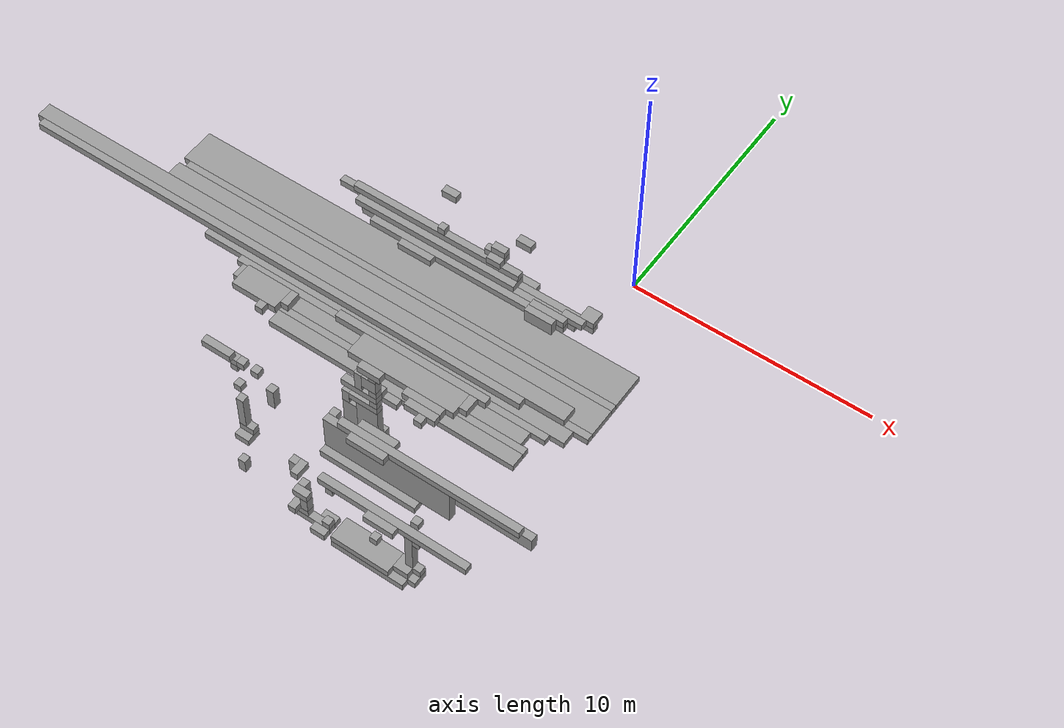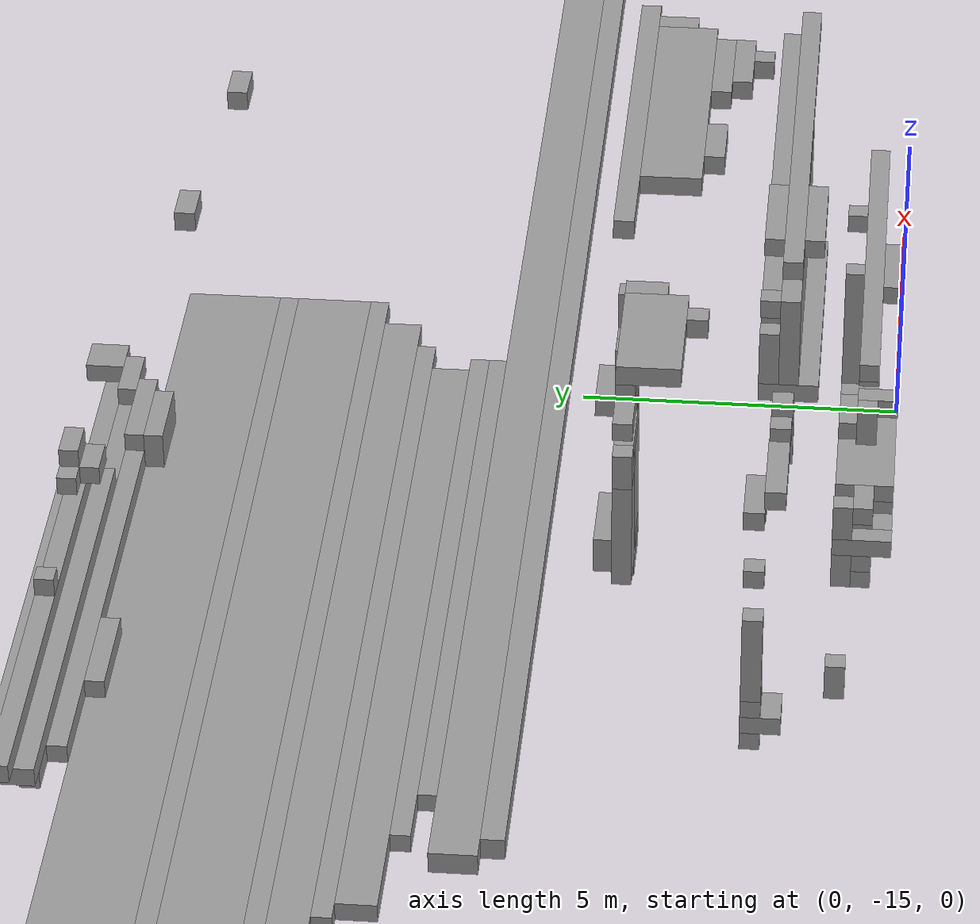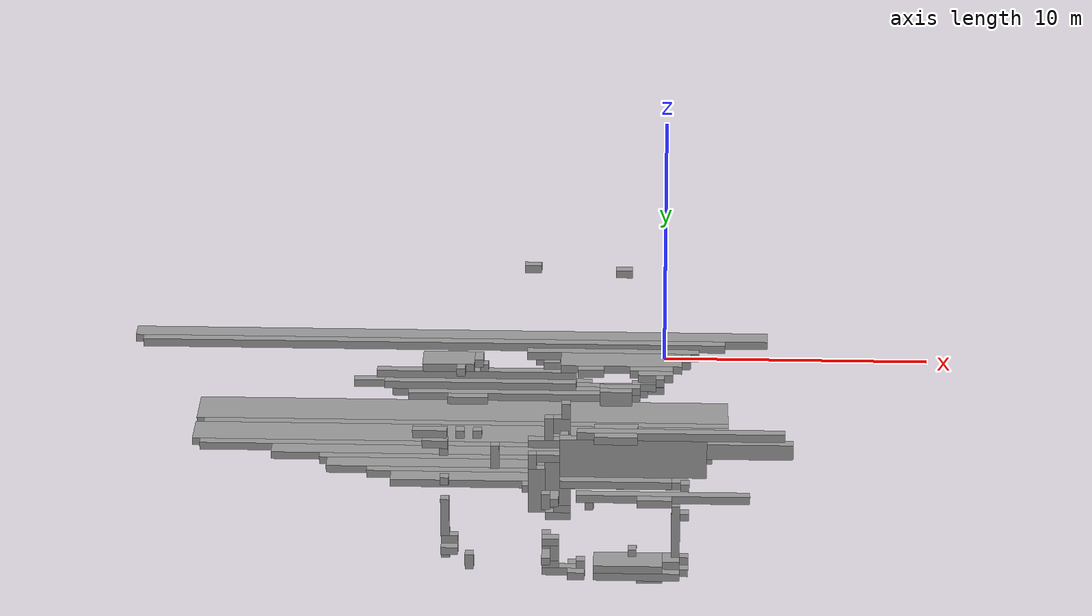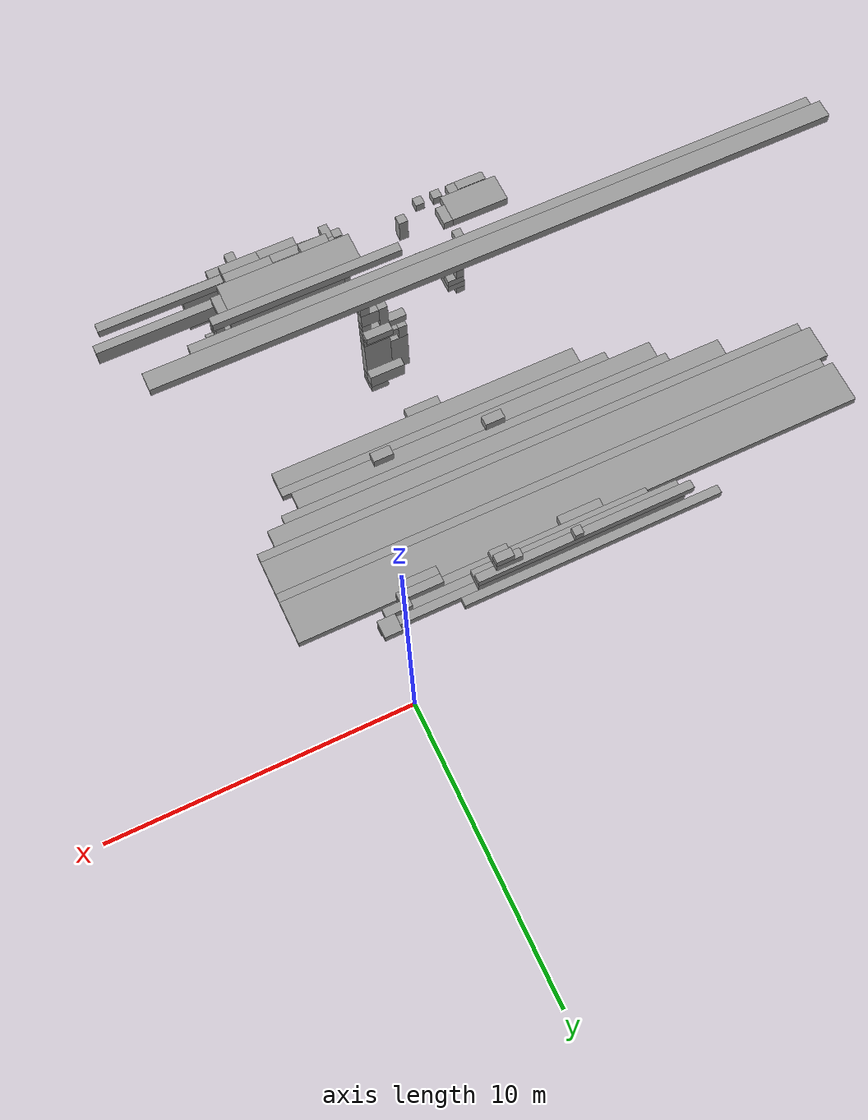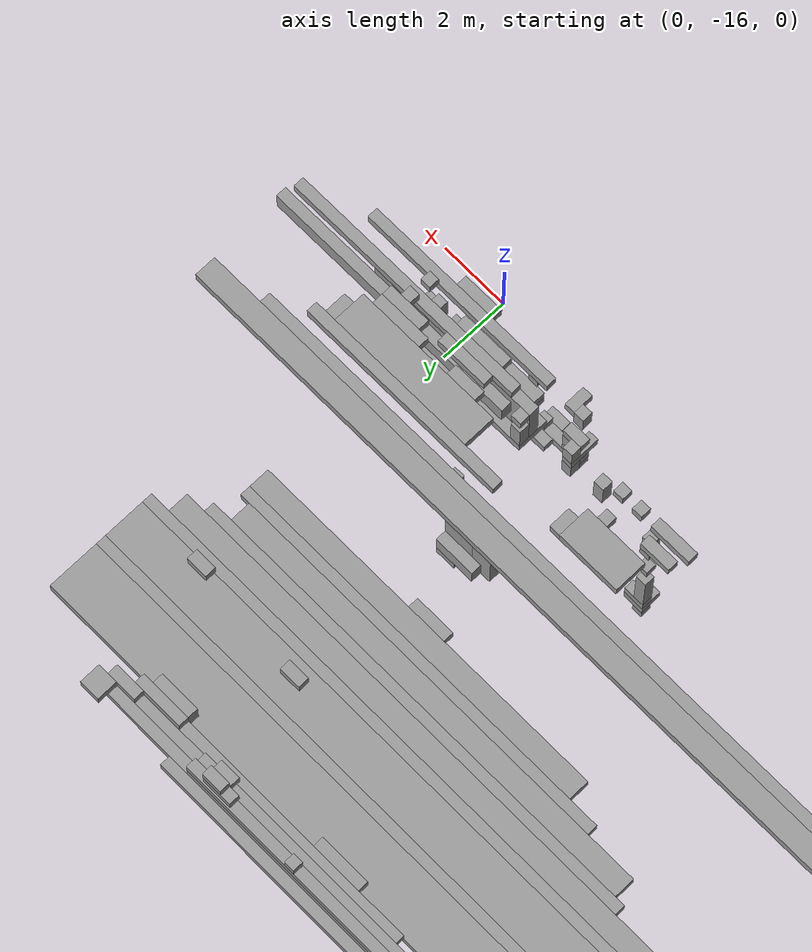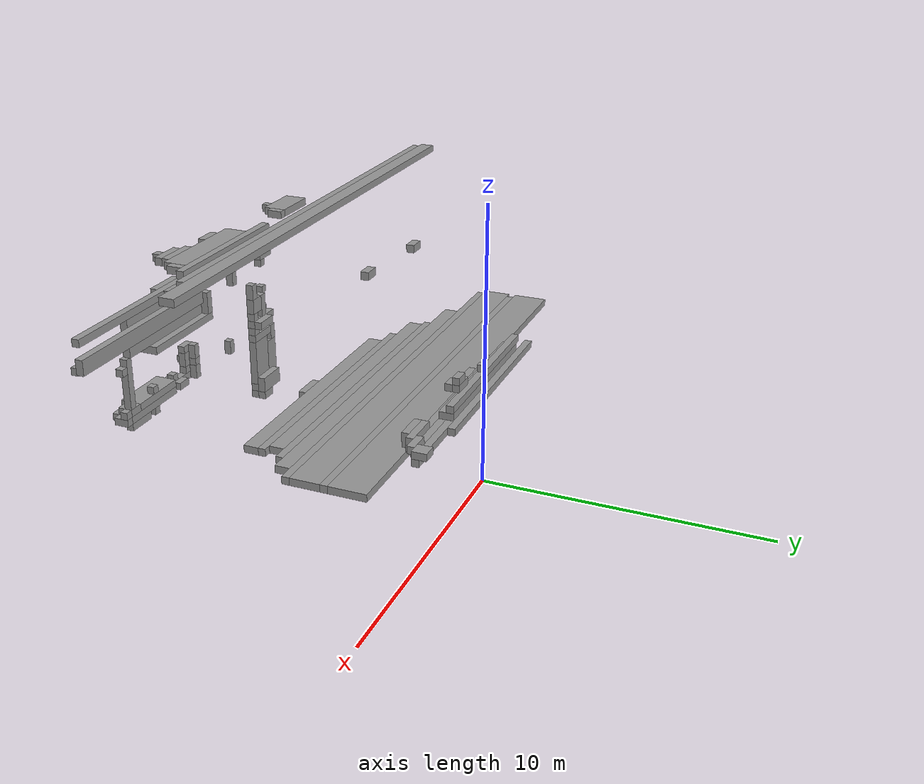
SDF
<sdf version="1.6">
 <world name="bt_world">
  <include><uri>model://sun</uri></include>
  <model name="obstacle_1034">
   <static>true</static>
   <pose>-7.5 -9.9 6.45 0 0 0</pose>
   <link name="link">
    <collision name="collision"><geometry><box><size>22.2 0.6 0.3</size></box></geometry></collision>
    <visual name="visual">
     <geometry><box><size>22.2 0.6 0.3</size></box></geometry>
     <material><ambient>0.5 0.5 0.5 1</ambient><diffuse>0.6 0.6 0.6 1</diffuse></material>
    </visual>
   </link>
  </model>
  <model name="obstacle_1057">
   <static>true</static>
   <pose>-8.1 -10.35 6.45 0 0 0</pose>
   <link name="link">
    <collision name="collision"><geometry><box><size>20.4 0.3 0.3</size></box></geometry></collision>
    <visual name="visual">
     <geometry><box><size>20.4 0.3 0.3</size></box></geometry>
     <material><ambient>0.5 0.5 0.5 1</ambient><diffuse>0.6 0.6 0.6 1</diffuse></material>
    </visual>
   </link>
  </model>
  <model name="obstacle_1107">
   <static>true</static>
   <pose>-7.5 -5.7 -0.15 0 0 0</pose>
   <link name="link">
    <collision name="collision"><geometry><box><size>19.8 1.2 0.3</size></box></geometry></collision>
    <visual name="visual">
     <geometry><box><size>19.8 1.2 0.3</size></box></geometry>
     <material><ambient>0.5 0.5 0.5 1</ambient><diffuse>0.6 0.6 0.6 1</diffuse></material>
    </visual>
   </link>
  </model>
  <model name="obstacle_1108">
   <static>true</static>
   <pose>-7.5 -4.05 -0.15 0 0 0</pose>
   <link name="link">
    <collision name="collision"><geometry><box><size>19.8 1.5 0.3</size></box></geometry></collision>
    <visual name="visual">
     <geometry><box><size>19.8 1.5 0.3</size></box></geometry>
     <material><ambient>0.5 0.5 0.5 1</ambient><diffuse>0.6 0.6 0.6 1</diffuse></material>
    </visual>
   </link>
  </model>
  <model name="obstacle_1150">
   <static>true</static>
   <pose>-7.35 -6.45 -0.15 0 0 0</pose>
   <link name="link">
    <collision name="collision"><geometry><box><size>19.5 0.3 0.3</size></box></geometry></collision>
    <visual name="visual">
     <geometry><box><size>19.5 0.3 0.3</size></box></geometry>
     <material><ambient>0.5 0.5 0.5 1</ambient><diffuse>0.6 0.6 0.6 1</diffuse></material>
    </visual>
   </link>
  </model>
  <model name="obstacle_1151">
   <static>true</static>
   <pose>-7.35 -4.95 -0.15 0 0 0</pose>
   <link name="link">
    <collision name="collision"><geometry><box><size>19.5 0.3 0.3</size></box></geometry></collision>
    <visual name="visual">
     <geometry><box><size>19.5 0.3 0.3</size></box></geometry>
     <material><ambient>0.5 0.5 0.5 1</ambient><diffuse>0.6 0.6 0.6 1</diffuse></material>
    </visual>
   </link>
  </model>
  <model name="obstacle_1298">
   <static>true</static>
   <pose>-6.3 -6.8999999999999995 -0.15 0 0 0</pose>
   <link name="link">
    <collision name="collision"><geometry><box><size>16.2 0.6 0.3</size></box></geometry></collision>
    <visual name="visual">
     <geometry><box><size>16.2 0.6 0.3</size></box></geometry>
     <material><ambient>0.5 0.5 0.5 1</ambient><diffuse>0.6 0.6 0.6 1</diffuse></material>
    </visual>
   </link>
  </model>
  <model name="obstacle_1578">
   <static>true</static>
   <pose>-5.7 -7.35 -0.15 0 0 0</pose>
   <link name="link">
    <collision name="collision">
     <geometry><box><size>13.799999999999999 0.3 0.3</size></box></geometry>
    </collision>
    <visual name="visual">
     <geometry><box><size>13.799999999999999 0.3 0.3</size></box></geometry>
     <material><ambient>0.5 0.5 0.5 1</ambient><diffuse>0.6 0.6 0.6 1</diffuse></material>
    </visual>
   </link>
  </model>
  <model name="obstacle_1591">
   <static>true</static>
   <pose>-5.85 -7.8 -0.15 0 0 0</pose>
   <link name="link">
    <collision name="collision"><geometry><box><size>12.9 0.6 0.3</size></box></geometry></collision>
    <visual name="visual">
     <geometry><box><size>12.9 0.6 0.3</size></box></geometry>
     <material><ambient>0.5 0.5 0.5 1</ambient><diffuse>0.6 0.6 0.6 1</diffuse></material>
    </visual>
   </link>
  </model>
  <model name="obstacle_1633">
   <static>true</static>
   <pose>-7.199999999999999 -2.25 0.15 0 0 0</pose>
   <link name="link">
    <collision name="collision"><geometry><box><size>9.0 0.3 0.3</size></box></geometry></collision>
    <visual name="visual">
     <geometry><box><size>9.0 0.3 0.3</size></box></geometry>
     <material><ambient>0.5 0.5 0.5 1</ambient><diffuse>0.6 0.6 0.6 1</diffuse></material>
    </visual>
   </link>
  </model>
  <model name="obstacle_1670">
   <static>true</static>
   <pose>-4.95 -8.25 -0.15 0 0 0</pose>
   <link name="link">
    <collision name="collision"><geometry><box><size>11.7 0.3 0.3</size></box></geometry></collision>
    <visual name="visual">
     <geometry><box><size>11.7 0.3 0.3</size></box></geometry>
     <material><ambient>0.5 0.5 0.5 1</ambient><diffuse>0.6 0.6 0.6 1</diffuse></material>
    </visual>
   </link>
  </model>
  <model name="obstacle_1672">
   <static>true</static>
   <pose>-7.05 -2.55 0.75 0 0 0</pose>
   <link name="link">
    <collision name="collision"><geometry><box><size>7.5 0.3 0.3</size></box></geometry></collision>
    <visual name="visual">
     <geometry><box><size>7.5 0.3 0.3</size></box></geometry>
     <material><ambient>0.5 0.5 0.5 1</ambient><diffuse>0.6 0.6 0.6 1</diffuse></material>
    </visual>
   </link>
  </model>
  <model name="obstacle_1675">
   <static>true</static>
   <pose>-6.8999999999999995 -2.6999999999999997 0.44999999999999996 0 0 0</pose>
   <link name="link">
    <collision name="collision"><geometry><box><size>7.199999999999999 0.6 0.3</size></box></geometry></collision>
    <visual name="visual">
     <geometry><box><size>7.199999999999999 0.6 0.3</size></box></geometry>
     <material><ambient>0.5 0.5 0.5 1</ambient><diffuse>0.6 0.6 0.6 1</diffuse></material>
    </visual>
   </link>
  </model>
  <model name="obstacle_1681">
   <static>true</static>
   <pose>-5.3999999999999995 -2.85 0.15 0 0 0</pose>
   <link name="link">
    <collision name="collision"><geometry><box><size>9.6 0.3 0.3</size></box></geometry></collision>
    <visual name="visual">
     <geometry><box><size>9.6 0.3 0.3</size></box></geometry>
     <material><ambient>0.5 0.5 0.5 1</ambient><diffuse>0.6 0.6 0.6 1</diffuse></material>
    </visual>
   </link>
  </model>
  <model name="obstacle_1691">
   <static>true</static>
   <pose>-4.5 -8.7 -0.15 0 0 0</pose>
   <link name="link">
    <collision name="collision">
     <geometry><box><size>10.799999999999999 0.6 0.3</size></box></geometry>
    </collision>
    <visual name="visual">
     <geometry><box><size>10.799999999999999 0.6 0.3</size></box></geometry>
     <material><ambient>0.5 0.5 0.5 1</ambient><diffuse>0.6 0.6 0.6 1</diffuse></material>
    </visual>
   </link>
  </model>
  <model name="obstacle_1706">
   <static>true</static>
   <pose>-5.25 -3.15 0.15 0 0 0</pose>
   <link name="link">
    <collision name="collision"><geometry><box><size>8.7 0.3 0.3</size></box></geometry></collision>
    <visual name="visual">
     <geometry><box><size>8.7 0.3 0.3</size></box></geometry>
     <material><ambient>0.5 0.5 0.5 1</ambient><diffuse>0.6 0.6 0.6 1</diffuse></material>
    </visual>
   </link>
  </model>
  <model name="obstacle_1732">
   <static>true</static>
   <pose>-8.1 -13.35 4.6499999999999995 0 0 0</pose>
   <link name="link">
    <collision name="collision"><geometry><box><size>1.2 0.3 0.3</size></box></geometry></collision>
    <visual name="visual">
     <geometry><box><size>1.2 0.3 0.3</size></box></geometry>
     <material><ambient>0.5 0.5 0.5 1</ambient><diffuse>0.6 0.6 0.6 1</diffuse></material>
    </visual>
   </link>
  </model>
  <model name="obstacle_1737">
   <static>true</static>
   <pose>-7.949999999999999 -13.049999999999999 4.05 0 0 0</pose>
   <link name="link">
    <collision name="collision">
     <geometry><box><size>0.8999999999999999 0.3 0.3</size></box></geometry>
    </collision>
    <visual name="visual">
     <geometry><box><size>0.8999999999999999 0.3 0.3</size></box></geometry>
     <material><ambient>0.5 0.5 0.5 1</ambient><diffuse>0.6 0.6 0.6 1</diffuse></material>
    </visual>
   </link>
  </model>
  <model name="obstacle_1738">
   <static>true</static>
   <pose>-7.5 -11.549999999999999 6.45 0 0 0</pose>
   <link name="link">
    <collision name="collision">
     <geometry><box><size>1.7999999999999998 0.8999999999999999 0.3</size></box></geometry>
    </collision>
    <visual name="visual">
     <geometry><box><size>1.7999999999999998 0.8999999999999999 0.3</size></box></geometry>
     <material><ambient>0.5 0.5 0.5 1</ambient><diffuse>0.6 0.6 0.6 1</diffuse></material>
    </visual>
   </link>
  </model>
  <model name="obstacle_1739">
   <static>true</static>
   <pose>-7.35 -3.4499999999999997 0.15 0 0 0</pose>
   <link name="link">
    <collision name="collision"><geometry><box><size>1.5 0.3 0.3</size></box></geometry></collision>
    <visual name="visual">
     <geometry><box><size>1.5 0.3 0.3</size></box></geometry>
     <material><ambient>0.5 0.5 0.5 1</ambient><diffuse>0.6 0.6 0.6 1</diffuse></material>
    </visual>
   </link>
  </model>
  <model name="obstacle_1743">
   <static>true</static>
   <pose>-7.5 -13.2 -0.15 0 0 0</pose>
   <link name="link">
    <collision name="collision"><geometry><box><size>0.6 0.6 0.3</size></box></geometry></collision>
    <visual name="visual">
     <geometry><box><size>0.6 0.6 0.3</size></box></geometry>
     <material><ambient>0.5 0.5 0.5 1</ambient><diffuse>0.6 0.6 0.6 1</diffuse></material>
    </visual>
   </link>
  </model>
  <model name="obstacle_1744">
   <static>true</static>
   <pose>-7.6499999999999995 -13.049999999999999 -0.44999999999999996 0 0 0</pose>
   <link name="link">
    <collision name="collision"><geometry><box><size>0.3 0.3 0.3</size></box></geometry></collision>
    <visual name="visual">
     <geometry><box><size>0.3 0.3 0.3</size></box></geometry>
     <material><ambient>0.5 0.5 0.5 1</ambient><diffuse>0.6 0.6 0.6 1</diffuse></material>
    </visual>
   </link>
  </model>
  <model name="obstacle_1745">
   <static>true</static>
   <pose>-7.5 -13.049999999999999 0.15 0 0 0</pose>
   <link name="link">
    <collision name="collision"><geometry><box><size>0.6 0.3 0.3</size></box></geometry></collision>
    <visual name="visual">
     <geometry><box><size>0.6 0.3 0.3</size></box></geometry>
     <material><ambient>0.5 0.5 0.5 1</ambient><diffuse>0.6 0.6 0.6 1</diffuse></material>
    </visual>
   </link>
  </model>
  <model name="obstacle_1746">
   <static>true</static>
   <pose>-7.6499999999999995 -13.049999999999999 1.05 0 0 0</pose>
   <link name="link">
    <collision name="collision"><geometry><box><size>0.3 0.3 1.5</size></box></geometry></collision>
    <visual name="visual">
     <geometry><box><size>0.3 0.3 1.5</size></box></geometry>
     <material><ambient>0.5 0.5 0.5 1</ambient><diffuse>0.6 0.6 0.6 1</diffuse></material>
    </visual>
   </link>
  </model>
  <model name="obstacle_1747">
   <static>true</static>
   <pose>-7.6499999999999995 -13.049999999999999 2.55 0 0 0</pose>
   <link name="link">
    <collision name="collision"><geometry><box><size>0.3 0.3 0.3</size></box></geometry></collision>
    <visual name="visual">
     <geometry><box><size>0.3 0.3 0.3</size></box></geometry>
     <material><ambient>0.5 0.5 0.5 1</ambient><diffuse>0.6 0.6 0.6 1</diffuse></material>
    </visual>
   </link>
  </model>
  <model name="obstacle_1748">
   <static>true</static>
   <pose>-7.6499999999999995 -13.049999999999999 3.75 0 0 0</pose>
   <link name="link">
    <collision name="collision"><geometry><box><size>0.3 0.3 0.3</size></box></geometry></collision>
    <visual name="visual">
     <geometry><box><size>0.3 0.3 0.3</size></box></geometry>
     <material><ambient>0.5 0.5 0.5 1</ambient><diffuse>0.6 0.6 0.6 1</diffuse></material>
    </visual>
   </link>
  </model>
  <model name="obstacle_1757">
   <static>true</static>
   <pose>-7.05 -2.55 0.15 0 0 0</pose>
   <link name="link">
    <collision name="collision">
     <geometry><box><size>0.8999999999999999 0.3 0.3</size></box></geometry>
    </collision>
    <visual name="visual">
     <geometry><box><size>0.8999999999999999 0.3 0.3</size></box></geometry>
     <material><ambient>0.5 0.5 0.5 1</ambient><diffuse>0.6 0.6 0.6 1</diffuse></material>
    </visual>
   </link>
  </model>
  <model name="obstacle_1762">
   <static>true</static>
   <pose>-7.05 -13.35 4.6499999999999995 0 0 0</pose>
   <link name="link">
    <collision name="collision"><geometry><box><size>0.3 0.3 0.3</size></box></geometry></collision>
    <visual name="visual">
     <geometry><box><size>0.3 0.3 0.3</size></box></geometry>
     <material><ambient>0.5 0.5 0.5 1</ambient><diffuse>0.6 0.6 0.6 1</diffuse></material>
    </visual>
   </link>
  </model>
  <model name="obstacle_1763">
   <static>true</static>
   <pose>-7.05 -12.15 6.45 0 0 0</pose>
   <link name="link">
    <collision name="collision"><geometry><box><size>0.3 0.3 0.3</size></box></geometry></collision>
    <visual name="visual">
     <geometry><box><size>0.3 0.3 0.3</size></box></geometry>
     <material><ambient>0.5 0.5 0.5 1</ambient><diffuse>0.6 0.6 0.6 1</diffuse></material>
    </visual>
   </link>
  </model>
  <model name="obstacle_1766">
   <static>true</static>
   <pose>-6.75 -14.25 0.0 0 0 0</pose>
   <link name="link">
    <collision name="collision"><geometry><box><size>0.3 0.3 0.6</size></box></geometry></collision>
    <visual name="visual">
     <geometry><box><size>0.3 0.3 0.6</size></box></geometry>
     <material><ambient>0.5 0.5 0.5 1</ambient><diffuse>0.6 0.6 0.6 1</diffuse></material>
    </visual>
   </link>
  </model>
  <model name="obstacle_1767">
   <static>true</static>
   <pose>-6.75 -2.55 1.05 0 0 0</pose>
   <link name="link">
    <collision name="collision"><geometry><box><size>0.3 0.3 0.3</size></box></geometry></collision>
    <visual name="visual">
     <geometry><box><size>0.3 0.3 0.3</size></box></geometry>
     <material><ambient>0.5 0.5 0.5 1</ambient><diffuse>0.6 0.6 0.6 1</diffuse></material>
    </visual>
   </link>
  </model>
  <model name="obstacle_1769">
   <static>true</static>
   <pose>-6.45 -13.35 4.6499999999999995 0 0 0</pose>
   <link name="link">
    <collision name="collision"><geometry><box><size>0.3 0.3 0.3</size></box></geometry></collision>
    <visual name="visual">
     <geometry><box><size>0.3 0.3 0.3</size></box></geometry>
     <material><ambient>0.5 0.5 0.5 1</ambient><diffuse>0.6 0.6 0.6 1</diffuse></material>
    </visual>
   </link>
  </model>
  <model name="obstacle_1770">
   <static>true</static>
   <pose>-6.45 -11.4 6.45 0 0 0</pose>
   <link name="link">
    <collision name="collision"><geometry><box><size>0.3 0.6 0.3</size></box></geometry></collision>
    <visual name="visual">
     <geometry><box><size>0.3 0.6 0.3</size></box></geometry>
     <material><ambient>0.5 0.5 0.5 1</ambient><diffuse>0.6 0.6 0.6 1</diffuse></material>
    </visual>
   </link>
  </model>
  <model name="obstacle_1773">
   <static>true</static>
   <pose>-5.85 -2.55 0.15 0 0 0</pose>
   <link name="link">
    <collision name="collision">
     <geometry><box><size>0.8999999999999999 0.3 0.3</size></box></geometry>
    </collision>
    <visual name="visual">
     <geometry><box><size>0.8999999999999999 0.3 0.3</size></box></geometry>
     <material><ambient>0.5 0.5 0.5 1</ambient><diffuse>0.6 0.6 0.6 1</diffuse></material>
    </visual>
   </link>
  </model>
  <model name="obstacle_1775">
   <static>true</static>
   <pose>-5.85 -13.35 3.75 0 0 0</pose>
   <link name="link">
    <collision name="collision">
     <geometry><box><size>0.3 0.3 0.8999999999999999</size></box></geometry>
    </collision>
    <visual name="visual">
     <geometry><box><size>0.3 0.3 0.8999999999999999</size></box></geometry>
     <material><ambient>0.5 0.5 0.5 1</ambient><diffuse>0.6 0.6 0.6 1</diffuse></material>
    </visual>
   </link>
  </model>
  <model name="obstacle_1779">
   <static>true</static>
   <pose>-4.5 -9.15 -0.15 0 0 0</pose>
   <link name="link">
    <collision name="collision"><geometry><box><size>1.2 0.3 0.3</size></box></geometry></collision>
    <visual name="visual">
     <geometry><box><size>1.2 0.3 0.3</size></box></geometry>
     <material><ambient>0.5 0.5 0.5 1</ambient><diffuse>0.6 0.6 0.6 1</diffuse></material>
    </visual>
   </link>
  </model>
  <model name="obstacle_1780">
   <static>true</static>
   <pose>-4.8 -4.6499999999999995 6.45 0 0 0</pose>
   <link name="link">
    <collision name="collision"><geometry><box><size>0.6 0.3 0.3</size></box></geometry></collision>
    <visual name="visual">
     <geometry><box><size>0.6 0.3 0.3</size></box></geometry>
     <material><ambient>0.5 0.5 0.5 1</ambient><diffuse>0.6 0.6 0.6 1</diffuse></material>
    </visual>
   </link>
  </model>
  <model name="obstacle_1781">
   <static>true</static>
   <pose>-4.6499999999999995 -2.55 0.15 0 0 0</pose>
   <link name="link">
    <collision name="collision">
     <geometry><box><size>0.8999999999999999 0.3 0.3</size></box></geometry>
    </collision>
    <visual name="visual">
     <geometry><box><size>0.8999999999999999 0.3 0.3</size></box></geometry>
     <material><ambient>0.5 0.5 0.5 1</ambient><diffuse>0.6 0.6 0.6 1</diffuse></material>
    </visual>
   </link>
  </model>
  <model name="obstacle_1784">
   <static>true</static>
   <pose>-4.5 -10.95 0.8999999999999999 0 0 0</pose>
   <link name="link">
    <collision name="collision">
     <geometry><box><size>0.6 0.3 1.7999999999999998</size></box></geometry>
    </collision>
    <visual name="visual">
     <geometry><box><size>0.6 0.3 1.7999999999999998</size></box></geometry>
     <material><ambient>0.5 0.5 0.5 1</ambient><diffuse>0.6 0.6 0.6 1</diffuse></material>
    </visual>
   </link>
  </model>
  <model name="obstacle_1785">
   <static>true</static>
   <pose>-4.6499999999999995 -10.95 2.1 0 0 0</pose>
   <link name="link">
    <collision name="collision"><geometry><box><size>0.3 0.3 0.6</size></box></geometry></collision>
    <visual name="visual">
     <geometry><box><size>0.3 0.3 0.6</size></box></geometry>
     <material><ambient>0.5 0.5 0.5 1</ambient><diffuse>0.6 0.6 0.6 1</diffuse></material>
    </visual>
   </link>
  </model>
  <model name="obstacle_1786">
   <static>true</static>
   <pose>-4.05 -10.95 2.85 0 0 0</pose>
   <link name="link">
    <collision name="collision"><geometry><box><size>1.5 0.3 0.3</size></box></geometry></collision>
    <visual name="visual">
     <geometry><box><size>1.5 0.3 0.3</size></box></geometry>
     <material><ambient>0.5 0.5 0.5 1</ambient><diffuse>0.6 0.6 0.6 1</diffuse></material>
    </visual>
   </link>
  </model>
  <model name="obstacle_1787">
   <static>true</static>
   <pose>-1.7999999999999998 -10.95 6.45 0 0 0</pose>
   <link name="link">
    <collision name="collision"><geometry><box><size>6.0 0.3 0.3</size></box></geometry></collision>
    <visual name="visual">
     <geometry><box><size>6.0 0.3 0.3</size></box></geometry>
     <material><ambient>0.5 0.5 0.5 1</ambient><diffuse>0.6 0.6 0.6 1</diffuse></material>
    </visual>
   </link>
  </model>
  <model name="obstacle_1788">
   <static>true</static>
   <pose>-4.35 -2.55 1.3499999999999999 0 0 0</pose>
   <link name="link">
    <collision name="collision">
     <geometry><box><size>0.8999999999999999 0.3 0.3</size></box></geometry>
    </collision>
    <visual name="visual">
     <geometry><box><size>0.8999999999999999 0.3 0.3</size></box></geometry>
     <material><ambient>0.5 0.5 0.5 1</ambient><diffuse>0.6 0.6 0.6 1</diffuse></material>
    </visual>
   </link>
  </model>
  <model name="obstacle_1798">
   <static>true</static>
   <pose>-3.9 -10.95 2.25 0 0 0</pose>
   <link name="link">
    <collision name="collision"><geometry><box><size>1.2 0.3 0.3</size></box></geometry></collision>
    <visual name="visual">
     <geometry><box><size>1.2 0.3 0.3</size></box></geometry>
     <material><ambient>0.5 0.5 0.5 1</ambient><diffuse>0.6 0.6 0.6 1</diffuse></material>
    </visual>
   </link>
  </model>
  <model name="obstacle_1799">
   <static>true</static>
   <pose>-3.9 -10.65 0.3 0 0 0</pose>
   <link name="link">
    <collision name="collision"><geometry><box><size>1.2 0.3 0.6</size></box></geometry></collision>
    <visual name="visual">
     <geometry><box><size>1.2 0.3 0.6</size></box></geometry>
     <material><ambient>0.5 0.5 0.5 1</ambient><diffuse>0.6 0.6 0.6 1</diffuse></material>
    </visual>
   </link>
  </model>
  <model name="obstacle_1800">
   <static>true</static>
   <pose>-4.2 -2.85 1.3499999999999999 0 0 0</pose>
   <link name="link">
    <collision name="collision"><geometry><box><size>0.6 0.3 0.3</size></box></geometry></collision>
    <visual name="visual">
     <geometry><box><size>0.6 0.3 0.3</size></box></geometry>
     <material><ambient>0.5 0.5 0.5 1</ambient><diffuse>0.6 0.6 0.6 1</diffuse></material>
    </visual>
   </link>
  </model>
  <model name="obstacle_1801">
   <static>true</static>
   <pose>-4.2 -2.55 1.65 0 0 0</pose>
   <link name="link">
    <collision name="collision"><geometry><box><size>0.6 0.3 0.3</size></box></geometry></collision>
    <visual name="visual">
     <geometry><box><size>0.6 0.3 0.3</size></box></geometry>
     <material><ambient>0.5 0.5 0.5 1</ambient><diffuse>0.6 0.6 0.6 1</diffuse></material>
    </visual>
   </link>
  </model>
  <model name="obstacle_1807">
   <static>true</static>
   <pose>-4.05 -14.549999999999999 0.44999999999999996 0 0 0</pose>
   <link name="link">
    <collision name="collision">
     <geometry><box><size>0.3 0.8999999999999999 0.3</size></box></geometry>
    </collision>
    <visual name="visual">
     <geometry><box><size>0.3 0.8999999999999999 0.3</size></box></geometry>
     <material><ambient>0.5 0.5 0.5 1</ambient><diffuse>0.6 0.6 0.6 1</diffuse></material>
    </visual>
   </link>
  </model>
  <model name="obstacle_1808">
   <static>true</static>
   <pose>-3.4499999999999997 -14.549999999999999 -0.15 0 0 0</pose>
   <link name="link">
    <collision name="collision"><geometry><box><size>1.5 0.3 0.3</size></box></geometry></collision>
    <visual name="visual">
     <geometry><box><size>1.5 0.3 0.3</size></box></geometry>
     <material><ambient>0.5 0.5 0.5 1</ambient><diffuse>0.6 0.6 0.6 1</diffuse></material>
    </visual>
   </link>
  </model>
  <model name="obstacle_1809">
   <static>true</static>
   <pose>-3.9 -14.549999999999999 0.15 0 0 0</pose>
   <link name="link">
    <collision name="collision"><geometry><box><size>0.6 0.3 0.3</size></box></geometry></collision>
    <visual name="visual">
     <geometry><box><size>0.6 0.3 0.3</size></box></geometry>
     <material><ambient>0.5 0.5 0.5 1</ambient><diffuse>0.6 0.6 0.6 1</diffuse></material>
    </visual>
   </link>
  </model>
  <model name="obstacle_1810">
   <static>true</static>
   <pose>-3.9 -14.549999999999999 1.05 0 0 0</pose>
   <link name="link">
    <collision name="collision"><geometry><box><size>0.6 0.3 0.3</size></box></geometry></collision>
    <visual name="visual">
     <geometry><box><size>0.6 0.3 0.3</size></box></geometry>
     <material><ambient>0.5 0.5 0.5 1</ambient><diffuse>0.6 0.6 0.6 1</diffuse></material>
    </visual>
   </link>
  </model>
  <model name="obstacle_1811">
   <static>true</static>
   <pose>-4.05 -14.549999999999999 2.6999999999999997 0 0 0</pose>
   <link name="link">
    <collision name="collision"><geometry><box><size>0.3 0.3 0.6</size></box></geometry></collision>
    <visual name="visual">
     <geometry><box><size>0.3 0.3 0.6</size></box></geometry>
     <material><ambient>0.5 0.5 0.5 1</ambient><diffuse>0.6 0.6 0.6 1</diffuse></material>
    </visual>
   </link>
  </model>
  <model name="obstacle_1812">
   <static>true</static>
   <pose>-4.05 -14.25 0.0 0 0 0</pose>
   <link name="link">
    <collision name="collision"><geometry><box><size>0.3 0.3 0.6</size></box></geometry></collision>
    <visual name="visual">
     <geometry><box><size>0.3 0.3 0.6</size></box></geometry>
     <material><ambient>0.5 0.5 0.5 1</ambient><diffuse>0.6 0.6 0.6 1</diffuse></material>
    </visual>
   </link>
  </model>
  <model name="obstacle_1813">
   <static>true</static>
   <pose>-4.05 -14.25 0.8999999999999999 0 0 0</pose>
   <link name="link">
    <collision name="collision"><geometry><box><size>0.3 0.3 0.6</size></box></geometry></collision>
    <visual name="visual">
     <geometry><box><size>0.3 0.3 0.6</size></box></geometry>
     <material><ambient>0.5 0.5 0.5 1</ambient><diffuse>0.6 0.6 0.6 1</diffuse></material>
    </visual>
   </link>
  </model>
  <model name="obstacle_1814">
   <static>true</static>
   <pose>-3.75 -10.95 -0.15 0 0 0</pose>
   <link name="link">
    <collision name="collision">
     <geometry><box><size>0.8999999999999999 0.3 0.3</size></box></geometry>
    </collision>
    <visual name="visual">
     <geometry><box><size>0.8999999999999999 0.3 0.3</size></box></geometry>
     <material><ambient>0.5 0.5 0.5 1</ambient><diffuse>0.6 0.6 0.6 1</diffuse></material>
    </visual>
   </link>
  </model>
  <model name="obstacle_1815">
   <static>true</static>
   <pose>-3.75 -10.95 1.2 0 0 0</pose>
   <link name="link">
    <collision name="collision">
     <geometry><box><size>0.8999999999999999 0.3 1.7999999999999998</size></box></geometry>
    </collision>
    <visual name="visual">
     <geometry><box><size>0.8999999999999999 0.3 1.7999999999999998</size></box></geometry>
     <material><ambient>0.5 0.5 0.5 1</ambient><diffuse>0.6 0.6 0.6 1</diffuse></material>
    </visual>
   </link>
  </model>
  <model name="obstacle_1816">
   <static>true</static>
   <pose>-4.05 -10.95 3.4499999999999997 0 0 0</pose>
   <link name="link">
    <collision name="collision">
     <geometry><box><size>0.3 0.3 0.8999999999999999</size></box></geometry>
    </collision>
    <visual name="visual">
     <geometry><box><size>0.3 0.3 0.8999999999999999</size></box></geometry>
     <material><ambient>0.5 0.5 0.5 1</ambient><diffuse>0.6 0.6 0.6 1</diffuse></material>
    </visual>
   </link>
  </model>
  <model name="obstacle_1817">
   <static>true</static>
   <pose>-3.75 -10.65 2.85 0 0 0</pose>
   <link name="link">
    <collision name="collision">
     <geometry><box><size>0.8999999999999999 0.3 0.3</size></box></geometry>
    </collision>
    <visual name="visual">
     <geometry><box><size>0.8999999999999999 0.3 0.3</size></box></geometry>
     <material><ambient>0.5 0.5 0.5 1</ambient><diffuse>0.6 0.6 0.6 1</diffuse></material>
    </visual>
   </link>
  </model>
  <model name="obstacle_1822">
   <static>true</static>
   <pose>-3.75 -14.7 2.85 0 0 0</pose>
   <link name="link">
    <collision name="collision"><geometry><box><size>0.3 0.6 0.3</size></box></geometry></collision>
    <visual name="visual">
     <geometry><box><size>0.3 0.6 0.3</size></box></geometry>
     <material><ambient>0.5 0.5 0.5 1</ambient><diffuse>0.6 0.6 0.6 1</diffuse></material>
    </visual>
   </link>
  </model>
  <model name="obstacle_1823">
   <static>true</static>
   <pose>-3.75 -14.549999999999999 0.6 0 0 0</pose>
   <link name="link">
    <collision name="collision"><geometry><box><size>0.3 0.3 0.6</size></box></geometry></collision>
    <visual name="visual">
     <geometry><box><size>0.3 0.3 0.6</size></box></geometry>
     <material><ambient>0.5 0.5 0.5 1</ambient><diffuse>0.6 0.6 0.6 1</diffuse></material>
    </visual>
   </link>
  </model>
  <model name="obstacle_1824">
   <static>true</static>
   <pose>-3.5999999999999996 -10.95 0.15 0 0 0</pose>
   <link name="link">
    <collision name="collision"><geometry><box><size>0.6 0.3 0.3</size></box></geometry></collision>
    <visual name="visual">
     <geometry><box><size>0.6 0.3 0.3</size></box></geometry>
     <material><ambient>0.5 0.5 0.5 1</ambient><diffuse>0.6 0.6 0.6 1</diffuse></material>
    </visual>
   </link>
  </model>
  <model name="obstacle_1825">
   <static>true</static>
   <pose>-3.5999999999999996 -10.95 3.5999999999999996 0 0 0</pose>
   <link name="link">
    <collision name="collision"><geometry><box><size>0.6 0.3 0.6</size></box></geometry></collision>
    <visual name="visual">
     <geometry><box><size>0.6 0.3 0.6</size></box></geometry>
     <material><ambient>0.5 0.5 0.5 1</ambient><diffuse>0.6 0.6 0.6 1</diffuse></material>
    </visual>
   </link>
  </model>
  <model name="obstacle_1826">
   <static>true</static>
   <pose>-3.5999999999999996 -10.65 -0.15 0 0 0</pose>
   <link name="link">
    <collision name="collision"><geometry><box><size>0.6 0.3 0.3</size></box></geometry></collision>
    <visual name="visual">
     <geometry><box><size>0.6 0.3 0.3</size></box></geometry>
     <material><ambient>0.5 0.5 0.5 1</ambient><diffuse>0.6 0.6 0.6 1</diffuse></material>
    </visual>
   </link>
  </model>
  <model name="obstacle_1827">
   <static>true</static>
   <pose>-1.95 -2.55 0.15 0 0 0</pose>
   <link name="link">
    <collision name="collision"><geometry><box><size>3.9 0.3 0.3</size></box></geometry></collision>
    <visual name="visual">
     <geometry><box><size>3.9 0.3 0.3</size></box></geometry>
     <material><ambient>0.5 0.5 0.5 1</ambient><diffuse>0.6 0.6 0.6 1</diffuse></material>
    </visual>
   </link>
  </model>
  <model name="obstacle_1834">
   <static>true</static>
   <pose>-1.65 -13.35 2.85 0 0 0</pose>
   <link name="link">
    <collision name="collision">
     <geometry><box><size>3.9 0.8999999999999999 0.3</size></box></geometry>
    </collision>
    <visual name="visual">
     <geometry><box><size>3.9 0.8999999999999999 0.3</size></box></geometry>
     <material><ambient>0.5 0.5 0.5 1</ambient><diffuse>0.6 0.6 0.6 1</diffuse></material>
    </visual>
   </link>
  </model>
  <model name="obstacle_1835">
   <static>true</static>
   <pose>-1.05 -13.35 3.75 0 0 0</pose>
   <link name="link">
    <collision name="collision"><geometry><box><size>5.1 0.3 1.5</size></box></geometry></collision>
    <visual name="visual">
     <geometry><box><size>5.1 0.3 1.5</size></box></geometry>
     <material><ambient>0.5 0.5 0.5 1</ambient><diffuse>0.6 0.6 0.6 1</diffuse></material>
    </visual>
   </link>
  </model>
  <model name="obstacle_1836">
   <static>true</static>
   <pose>-3.4499999999999997 -13.049999999999999 3.4499999999999997 0 0 0</pose>
   <link name="link">
    <collision name="collision">
     <geometry><box><size>0.3 0.3 0.8999999999999999</size></box></geometry>
    </collision>
    <visual name="visual">
     <geometry><box><size>0.3 0.3 0.8999999999999999</size></box></geometry>
     <material><ambient>0.5 0.5 0.5 1</ambient><diffuse>0.6 0.6 0.6 1</diffuse></material>
    </visual>
   </link>
  </model>
  <model name="obstacle_1837">
   <static>true</static>
   <pose>-3.4499999999999997 -13.049999999999999 4.35 0 0 0</pose>
   <link name="link">
    <collision name="collision"><geometry><box><size>0.3 0.3 0.3</size></box></geometry></collision>
    <visual name="visual">
     <geometry><box><size>0.3 0.3 0.3</size></box></geometry>
     <material><ambient>0.5 0.5 0.5 1</ambient><diffuse>0.6 0.6 0.6 1</diffuse></material>
    </visual>
   </link>
  </model>
  <model name="obstacle_1838">
   <static>true</static>
   <pose>-1.5 -11.549999999999999 6.45 0 0 0</pose>
   <link name="link">
    <collision name="collision">
     <geometry><box><size>4.2 0.8999999999999999 0.3</size></box></geometry>
    </collision>
    <visual name="visual">
     <geometry><box><size>4.2 0.8999999999999999 0.3</size></box></geometry>
     <material><ambient>0.5 0.5 0.5 1</ambient><diffuse>0.6 0.6 0.6 1</diffuse></material>
    </visual>
   </link>
  </model>
  <model name="obstacle_1839">
   <static>true</static>
   <pose>-3.4499999999999997 -10.95 2.55 0 0 0</pose>
   <link name="link">
    <collision name="collision"><geometry><box><size>0.3 0.3 0.3</size></box></geometry></collision>
    <visual name="visual">
     <geometry><box><size>0.3 0.3 0.3</size></box></geometry>
     <material><ambient>0.5 0.5 0.5 1</ambient><diffuse>0.6 0.6 0.6 1</diffuse></material>
    </visual>
   </link>
  </model>
  <model name="obstacle_1840">
   <static>true</static>
   <pose>-3.4499999999999997 -10.95 3.15 0 0 0</pose>
   <link name="link">
    <collision name="collision"><geometry><box><size>0.3 0.3 0.3</size></box></geometry></collision>
    <visual name="visual">
     <geometry><box><size>0.3 0.3 0.3</size></box></geometry>
     <material><ambient>0.5 0.5 0.5 1</ambient><diffuse>0.6 0.6 0.6 1</diffuse></material>
    </visual>
   </link>
  </model>
  <model name="obstacle_1841">
   <static>true</static>
   <pose>-3.4499999999999997 -10.95 4.2 0 0 0</pose>
   <link name="link">
    <collision name="collision"><geometry><box><size>0.3 0.3 0.6</size></box></geometry></collision>
    <visual name="visual">
     <geometry><box><size>0.3 0.3 0.6</size></box></geometry>
     <material><ambient>0.5 0.5 0.5 1</ambient><diffuse>0.6 0.6 0.6 1</diffuse></material>
    </visual>
   </link>
  </model>
  <model name="obstacle_1847">
   <static>true</static>
   <pose>-3.0 -14.85 -0.15 0 0 0</pose>
   <link name="link">
    <collision name="collision"><geometry><box><size>0.6 0.3 0.3</size></box></geometry></collision>
    <visual name="visual">
     <geometry><box><size>0.6 0.3 0.3</size></box></geometry>
     <material><ambient>0.5 0.5 0.5 1</ambient><diffuse>0.6 0.6 0.6 1</diffuse></material>
    </visual>
   </link>
  </model>
  <model name="obstacle_1848">
   <static>true</static>
   <pose>-3.0 -14.25 -0.15 0 0 0</pose>
   <link name="link">
    <collision name="collision"><geometry><box><size>0.6 0.3 0.3</size></box></geometry></collision>
    <visual name="visual">
     <geometry><box><size>0.6 0.3 0.3</size></box></geometry>
     <material><ambient>0.5 0.5 0.5 1</ambient><diffuse>0.6 0.6 0.6 1</diffuse></material>
    </visual>
   </link>
  </model>
  <model name="obstacle_1853">
   <static>true</static>
   <pose>-2.85 -14.549999999999999 0.15 0 0 0</pose>
   <link name="link">
    <collision name="collision"><geometry><box><size>0.3 0.3 0.3</size></box></geometry></collision>
    <visual name="visual">
     <geometry><box><size>0.3 0.3 0.3</size></box></geometry>
     <material><ambient>0.5 0.5 0.5 1</ambient><diffuse>0.6 0.6 0.6 1</diffuse></material>
    </visual>
   </link>
  </model>
  <model name="obstacle_1854">
   <static>true</static>
   <pose>0.0 -14.549999999999999 2.85 0 0 0</pose>
   <link name="link">
    <collision name="collision"><geometry><box><size>6.0 0.3 0.3</size></box></geometry></collision>
    <visual name="visual">
     <geometry><box><size>6.0 0.3 0.3</size></box></geometry>
     <material><ambient>0.5 0.5 0.5 1</ambient><diffuse>0.6 0.6 0.6 1</diffuse></material>
    </visual>
   </link>
  </model>
  <model name="obstacle_1855">
   <static>true</static>
   <pose>0.6 -13.35 4.6499999999999995 0 0 0</pose>
   <link name="link">
    <collision name="collision"><geometry><box><size>7.199999999999999 0.3 0.3</size></box></geometry></collision>
    <visual name="visual">
     <geometry><box><size>7.199999999999999 0.3 0.3</size></box></geometry>
     <material><ambient>0.5 0.5 0.5 1</ambient><diffuse>0.6 0.6 0.6 1</diffuse></material>
    </visual>
   </link>
  </model>
  <model name="obstacle_1856">
   <static>true</static>
   <pose>0.75 -13.049999999999999 3.9 0 0 0</pose>
   <link name="link">
    <collision name="collision"><geometry><box><size>7.5 0.3 0.6</size></box></geometry></collision>
    <visual name="visual">
     <geometry><box><size>7.5 0.3 0.6</size></box></geometry>
     <material><ambient>0.5 0.5 0.5 1</ambient><diffuse>0.6 0.6 0.6 1</diffuse></material>
    </visual>
   </link>
  </model>
  <model name="obstacle_1857">
   <static>true</static>
   <pose>-2.55 -12.15 6.45 0 0 0</pose>
   <link name="link">
    <collision name="collision">
     <geometry><box><size>0.8999999999999999 0.3 0.3</size></box></geometry>
    </collision>
    <visual name="visual">
     <geometry><box><size>0.8999999999999999 0.3 0.3</size></box></geometry>
     <material><ambient>0.5 0.5 0.5 1</ambient><diffuse>0.6 0.6 0.6 1</diffuse></material>
    </visual>
   </link>
  </model>
  <model name="obstacle_1868">
   <static>true</static>
   <pose>-2.55 -14.549999999999999 2.55 0 0 0</pose>
   <link name="link">
    <collision name="collision"><geometry><box><size>0.3 0.3 0.3</size></box></geometry></collision>
    <visual name="visual">
     <geometry><box><size>0.3 0.3 0.3</size></box></geometry>
     <material><ambient>0.5 0.5 0.5 1</ambient><diffuse>0.6 0.6 0.6 1</diffuse></material>
    </visual>
   </link>
  </model>
  <model name="obstacle_1876">
   <static>true</static>
   <pose>-0.8999999999999999 -14.549999999999999 -0.15 0 0 0</pose>
   <link name="link">
    <collision name="collision">
     <geometry><box><size>3.0 0.8999999999999999 0.3</size></box></geometry>
    </collision>
    <visual name="visual">
     <geometry><box><size>3.0 0.8999999999999999 0.3</size></box></geometry>
     <material><ambient>0.5 0.5 0.5 1</ambient><diffuse>0.6 0.6 0.6 1</diffuse></material>
    </visual>
   </link>
  </model>
  <model name="obstacle_1877">
   <static>true</static>
   <pose>-1.2 -14.549999999999999 0.15 0 0 0</pose>
   <link name="link">
    <collision name="collision">
     <geometry><box><size>2.4 0.8999999999999999 0.3</size></box></geometry>
    </collision>
    <visual name="visual">
     <geometry><box><size>2.4 0.8999999999999999 0.3</size></box></geometry>
     <material><ambient>0.5 0.5 0.5 1</ambient><diffuse>0.6 0.6 0.6 1</diffuse></material>
    </visual>
   </link>
  </model>
  <model name="obstacle_1878">
   <static>true</static>
   <pose>-1.65 -13.65 4.6499999999999995 0 0 0</pose>
   <link name="link">
    <collision name="collision"><geometry><box><size>1.5 0.3 0.3</size></box></geometry></collision>
    <visual name="visual">
     <geometry><box><size>1.5 0.3 0.3</size></box></geometry>
     <material><ambient>0.5 0.5 0.5 1</ambient><diffuse>0.6 0.6 0.6 1</diffuse></material>
    </visual>
   </link>
  </model>
  <model name="obstacle_1880">
   <static>true</static>
   <pose>-1.65 -13.049999999999999 4.6499999999999995 0 0 0</pose>
   <link name="link">
    <collision name="collision"><geometry><box><size>1.5 0.3 0.3</size></box></geometry></collision>
    <visual name="visual">
     <geometry><box><size>1.5 0.3 0.3</size></box></geometry>
     <material><ambient>0.5 0.5 0.5 1</ambient><diffuse>0.6 0.6 0.6 1</diffuse></material>
    </visual>
   </link>
  </model>
  <model name="obstacle_1881">
   <static>true</static>
   <pose>-1.7999999999999998 -3.4499999999999997 0.3 0 0 0</pose>
   <link name="link">
    <collision name="collision"><geometry><box><size>1.2 0.3 0.6</size></box></geometry></collision>
    <visual name="visual">
     <geometry><box><size>1.2 0.3 0.6</size></box></geometry>
     <material><ambient>0.5 0.5 0.5 1</ambient><diffuse>0.6 0.6 0.6 1</diffuse></material>
    </visual>
   </link>
  </model>
  <model name="obstacle_1882">
   <static>true</static>
   <pose>-1.65 -3.15 0.44999999999999996 0 0 0</pose>
   <link name="link">
    <collision name="collision"><geometry><box><size>1.5 0.3 0.3</size></box></geometry></collision>
    <visual name="visual">
     <geometry><box><size>1.5 0.3 0.3</size></box></geometry>
     <material><ambient>0.5 0.5 0.5 1</ambient><diffuse>0.6 0.6 0.6 1</diffuse></material>
    </visual>
   </link>
  </model>
  <model name="obstacle_1895">
   <static>true</static>
   <pose>-1.5 -4.95 6.45 0 0 0</pose>
   <link name="link">
    <collision name="collision"><geometry><box><size>0.6 0.3 0.3</size></box></geometry></collision>
    <visual name="visual">
     <geometry><box><size>0.6 0.3 0.3</size></box></geometry>
     <material><ambient>0.5 0.5 0.5 1</ambient><diffuse>0.6 0.6 0.6 1</diffuse></material>
    </visual>
   </link>
  </model>
  <model name="obstacle_1961">
   <static>true</static>
   <pose>-1.05 -14.25 -0.44999999999999996 0 0 0</pose>
   <link name="link">
    <collision name="collision"><geometry><box><size>0.3 0.3 0.3</size></box></geometry></collision>
    <visual name="visual">
     <geometry><box><size>0.3 0.3 0.3</size></box></geometry>
     <material><ambient>0.5 0.5 0.5 1</ambient><diffuse>0.6 0.6 0.6 1</diffuse></material>
    </visual>
   </link>
  </model>
  <model name="obstacle_1962">
   <static>true</static>
   <pose>-1.05 -14.25 0.44999999999999996 0 0 0</pose>
   <link name="link">
    <collision name="collision"><geometry><box><size>0.3 0.3 0.3</size></box></geometry></collision>
    <visual name="visual">
     <geometry><box><size>0.3 0.3 0.3</size></box></geometry>
     <material><ambient>0.5 0.5 0.5 1</ambient><diffuse>0.6 0.6 0.6 1</diffuse></material>
    </visual>
   </link>
  </model>
  <model name="obstacle_1963">
   <static>true</static>
   <pose>-0.44999999999999996 -12.15 6.45 0 0 0</pose>
   <link name="link">
    <collision name="collision"><geometry><box><size>1.5 0.3 0.3</size></box></geometry></collision>
    <visual name="visual">
     <geometry><box><size>1.5 0.3 0.3</size></box></geometry>
     <material><ambient>0.5 0.5 0.5 1</ambient><diffuse>0.6 0.6 0.6 1</diffuse></material>
    </visual>
   </link>
  </model>
  <model name="obstacle_1966">
   <static>true</static>
   <pose>-0.75 -2.85 0.44999999999999996 0 0 0</pose>
   <link name="link">
    <collision name="collision">
     <geometry><box><size>0.8999999999999999 0.3 0.3</size></box></geometry>
    </collision>
    <visual name="visual">
     <geometry><box><size>0.8999999999999999 0.3 0.3</size></box></geometry>
     <material><ambient>0.5 0.5 0.5 1</ambient><diffuse>0.6 0.6 0.6 1</diffuse></material>
    </visual>
   </link>
  </model>
  <model name="obstacle_2041">
   <static>true</static>
   <pose>-0.3 -14.85 2.85 0 0 0</pose>
   <link name="link">
    <collision name="collision"><geometry><box><size>1.2 0.3 0.3</size></box></geometry></collision>
    <visual name="visual">
     <geometry><box><size>1.2 0.3 0.3</size></box></geometry>
     <material><ambient>0.5 0.5 0.5 1</ambient><diffuse>0.6 0.6 0.6 1</diffuse></material>
    </visual>
   </link>
  </model>
  <model name="obstacle_2042">
   <static>true</static>
   <pose>-0.44999999999999996 -14.549999999999999 -0.44999999999999996 0 0 0</pose>
   <link name="link">
    <collision name="collision">
     <geometry><box><size>0.8999999999999999 0.3 0.3</size></box></geometry>
    </collision>
    <visual name="visual">
     <geometry><box><size>0.8999999999999999 0.3 0.3</size></box></geometry>
     <material><ambient>0.5 0.5 0.5 1</ambient><diffuse>0.6 0.6 0.6 1</diffuse></material>
    </visual>
   </link>
  </model>
  <model name="obstacle_2044">
   <static>true</static>
   <pose>-0.3 -12.45 6.45 0 0 0</pose>
   <link name="link">
    <collision name="collision"><geometry><box><size>1.2 0.3 0.3</size></box></geometry></collision>
    <visual name="visual">
     <geometry><box><size>1.2 0.3 0.3</size></box></geometry>
     <material><ambient>0.5 0.5 0.5 1</ambient><diffuse>0.6 0.6 0.6 1</diffuse></material>
    </visual>
   </link>
  </model>
  <model name="obstacle_2098">
   <static>true</static>
   <pose>0.0 -14.25 -0.44999999999999996 0 0 0</pose>
   <link name="link">
    <collision name="collision"><geometry><box><size>1.2 0.3 0.3</size></box></geometry></collision>
    <visual name="visual">
     <geometry><box><size>1.2 0.3 0.3</size></box></geometry>
     <material><ambient>0.5 0.5 0.5 1</ambient><diffuse>0.6 0.6 0.6 1</diffuse></material>
    </visual>
   </link>
  </model>
  <model name="obstacle_2100">
   <static>true</static>
   <pose>-0.3 -2.4 0.44999999999999996 0 0 0</pose>
   <link name="link">
    <collision name="collision"><geometry><box><size>0.6 0.6 0.3</size></box></geometry></collision>
    <visual name="visual">
     <geometry><box><size>0.6 0.6 0.3</size></box></geometry>
     <material><ambient>0.5 0.5 0.5 1</ambient><diffuse>0.6 0.6 0.6 1</diffuse></material>
    </visual>
   </link>
  </model>
  <model name="obstacle_2120">
   <static>true</static>
   <pose>-0.15 -12.75 6.45 0 0 0</pose>
   <link name="link">
    <collision name="collision"><geometry><box><size>0.3 0.3 0.3</size></box></geometry></collision>
    <visual name="visual">
     <geometry><box><size>0.3 0.3 0.3</size></box></geometry>
     <material><ambient>0.5 0.5 0.5 1</ambient><diffuse>0.6 0.6 0.6 1</diffuse></material>
    </visual>
   </link>
  </model>
  <model name="obstacle_2148">
   <static>true</static>
   <pose>0.3 -14.399999999999999 0.15 0 0 0</pose>
   <link name="link">
    <collision name="collision"><geometry><box><size>0.6 0.6 0.3</size></box></geometry></collision>
    <visual name="visual">
     <geometry><box><size>0.6 0.6 0.3</size></box></geometry>
     <material><ambient>0.5 0.5 0.5 1</ambient><diffuse>0.6 0.6 0.6 1</diffuse></material>
    </visual>
   </link>
  </model>
  <model name="obstacle_2164">
   <static>true</static>
   <pose>0.44999999999999996 -14.25 1.3499999999999999 0 0 0</pose>
   <link name="link">
    <collision name="collision"><geometry><box><size>0.3 0.3 2.1</size></box></geometry></collision>
    <visual name="visual">
     <geometry><box><size>0.3 0.3 2.1</size></box></geometry>
     <material><ambient>0.5 0.5 0.5 1</ambient><diffuse>0.6 0.6 0.6 1</diffuse></material>
    </visual>
   </link>
  </model>
  <model name="obstacle_2184">
   <static>true</static>
   <pose>0.75 -14.399999999999999 -0.15 0 0 0</pose>
   <link name="link">
    <collision name="collision"><geometry><box><size>0.3 0.6 0.3</size></box></geometry></collision>
    <visual name="visual">
     <geometry><box><size>0.3 0.6 0.3</size></box></geometry>
     <material><ambient>0.5 0.5 0.5 1</ambient><diffuse>0.6 0.6 0.6 1</diffuse></material>
    </visual>
   </link>
  </model>
  <model name="obstacle_2186">
   <static>true</static>
   <pose>0.75 -14.25 0.15 0 0 0</pose>
   <link name="link">
    <collision name="collision"><geometry><box><size>0.3 0.3 0.3</size></box></geometry></collision>
    <visual name="visual">
     <geometry><box><size>0.3 0.3 0.3</size></box></geometry>
     <material><ambient>0.5 0.5 0.5 1</ambient><diffuse>0.6 0.6 0.6 1</diffuse></material>
    </visual>
   </link>
  </model>
  <model name="obstacle_2187">
   <static>true</static>
   <pose>0.75 -14.25 1.95 0 0 0</pose>
   <link name="link">
    <collision name="collision"><geometry><box><size>0.3 0.3 0.3</size></box></geometry></collision>
    <visual name="visual">
     <geometry><box><size>0.3 0.3 0.3</size></box></geometry>
     <material><ambient>0.5 0.5 0.5 1</ambient><diffuse>0.6 0.6 0.6 1</diffuse></material>
    </visual>
   </link>
  </model>
  <model name="obstacle_2188">
   <static>true</static>
   <pose>0.75 -14.25 3.15 0 0 0</pose>
   <link name="link">
    <collision name="collision"><geometry><box><size>0.3 0.3 0.3</size></box></geometry></collision>
    <visual name="visual">
     <geometry><box><size>0.3 0.3 0.3</size></box></geometry>
     <material><ambient>0.5 0.5 0.5 1</ambient><diffuse>0.6 0.6 0.6 1</diffuse></material>
    </visual>
   </link>
  </model>
  <model name="obstacle_2189">
   <static>true</static>
   <pose>0.75 -11.4 6.45 0 0 0</pose>
   <link name="link">
    <collision name="collision"><geometry><box><size>0.3 0.6 0.3</size></box></geometry></collision>
    <visual name="visual">
     <geometry><box><size>0.3 0.6 0.3</size></box></geometry>
     <material><ambient>0.5 0.5 0.5 1</ambient><diffuse>0.6 0.6 0.6 1</diffuse></material>
    </visual>
   </link>
  </model>
 </world>
</sdf>
